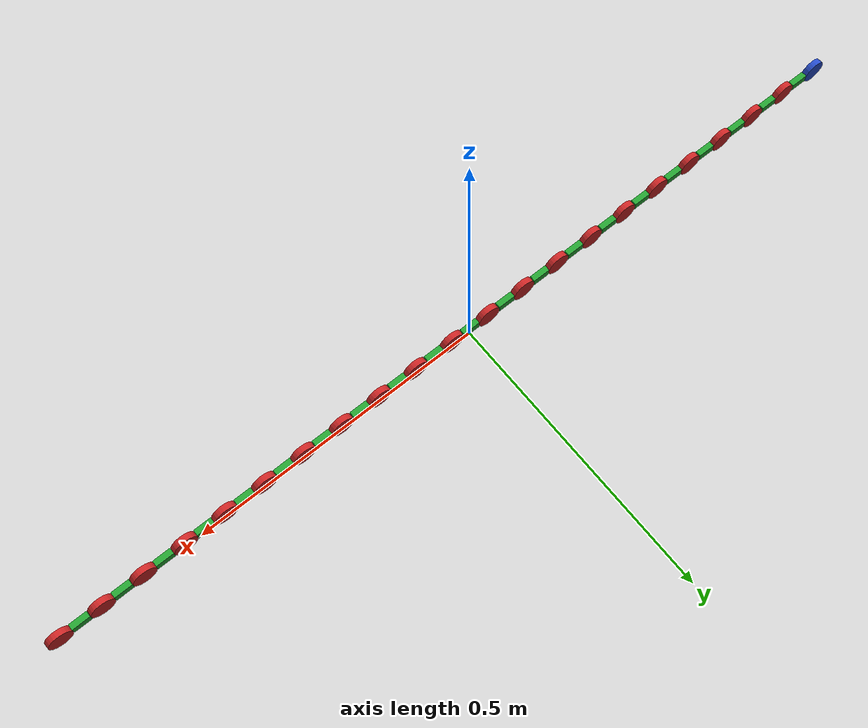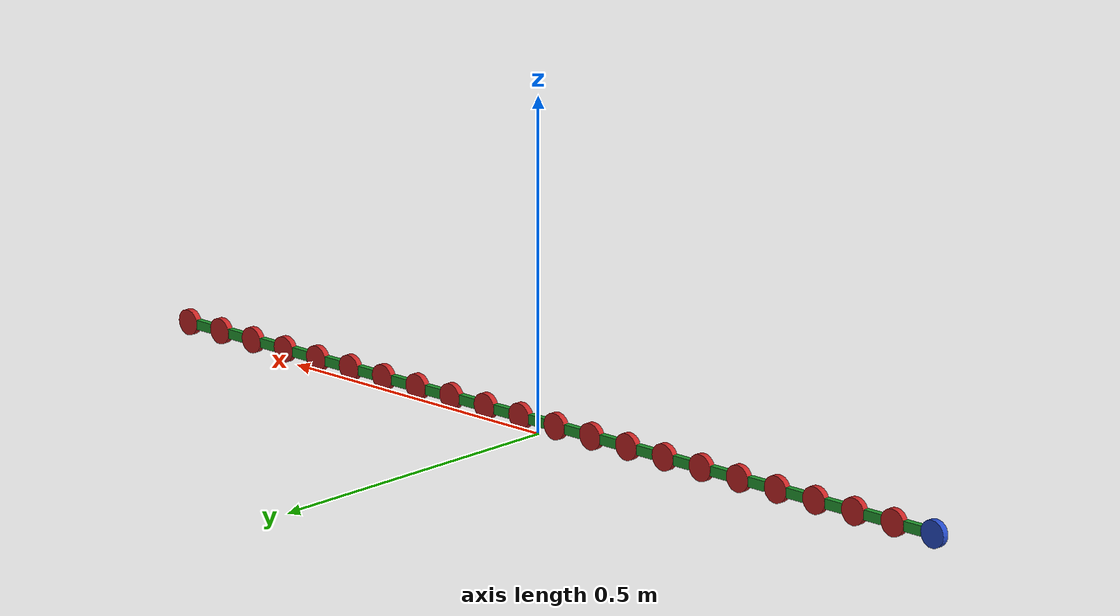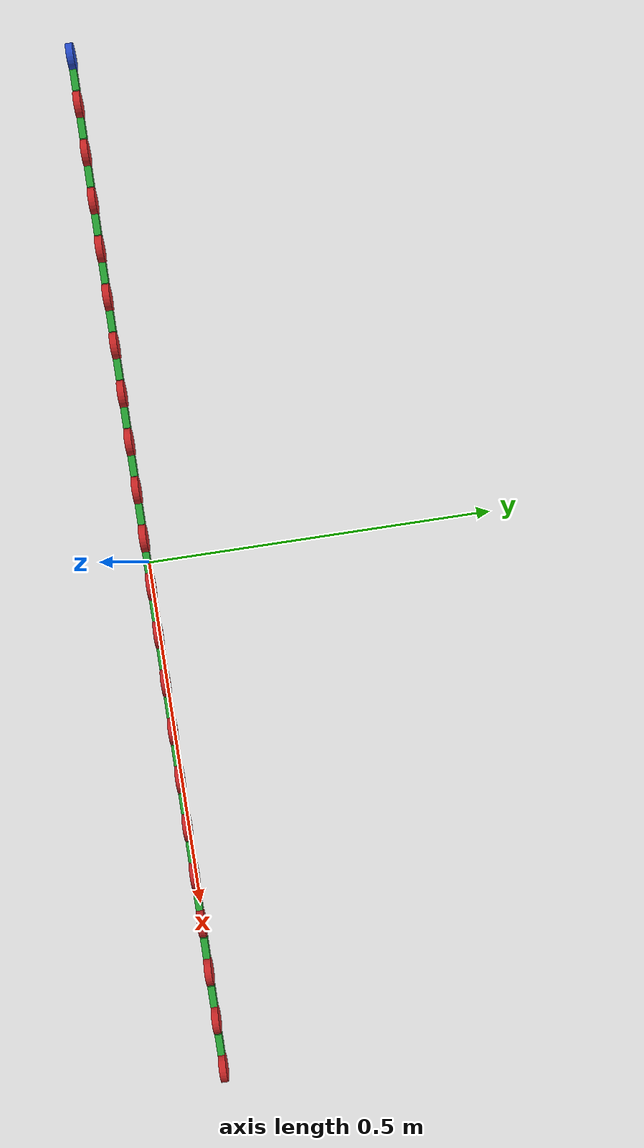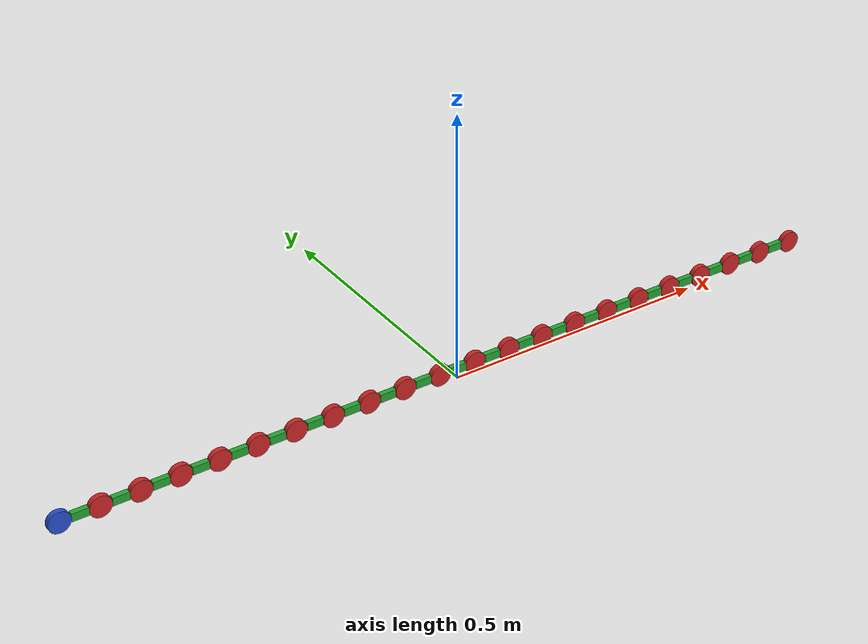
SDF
<?xml version="1.0"?>

<sdf version="1.4">
    <model name="chain_straight">
        <static>false</static>
        <pose>0 0 0.02 0 0 0</pose>

        <include>
            <uri>model://chain_link</uri>
            <pose>-0.7 0 0 0 0 0</pose>
            <name>chain_link_01</name>
        </include>

        <include>
            <uri>model://chain_link</uri>
            <pose>-0.63 0 0 0 0 0</pose>
            <name>chain_link_02</name>
        </include>

        <include>
            <uri>model://chain_link</uri>
            <pose>-0.56 0 0 0 0 0</pose>
            <name>chain_link_03</name>
        </include>

        <include>
            <uri>model://chain_link</uri>
            <pose>-0.49 0 0 0 0 0</pose>
            <name>chain_link_04</name>
        </include>

        <include>
            <uri>model://chain_link</uri>
            <pose>-0.42 0 0 0 0 0</pose>
            <name>chain_link_05</name>
        </include>

        <include>
            <uri>model://chain_link</uri>
            <pose>-0.35 0 0 0 0 0</pose>
            <name>chain_link_06</name>
        </include>

        <include>
            <uri>model://chain_link</uri>
            <pose>-0.28 0 0 0 0 0</pose>
            <name>chain_link_07</name>
        </include>

        <include>
            <uri>model://chain_link</uri>
            <pose>-0.21 0 0 0 0 0</pose>
            <name>chain_link_08</name>
        </include>

        <include>
            <uri>model://chain_link</uri>
            <pose>-0.14 0 0 0 0 0</pose>
            <name>chain_link_09</name>
        </include>

        <include>
            <uri>model://chain_link</uri>
            <pose>-0.07 0 0 0 0 0</pose>
            <name>chain_link_10</name>
        </include>

        <include>
            <uri>model://chain_link</uri>
            <pose>0 0 0 0 0 0</pose>
            <name>chain_link_11</name>
        </include>

        <include>
            <uri>model://chain_link</uri>
            <pose>0.07 0 0 0 0 0</pose>
            <name>chain_link_12</name>
        </include>

        <include>
            <uri>model://chain_link</uri>
            <pose>0.14 0 0 0 0 0</pose>
            <name>chain_link_13</name>
        </include>

        <include>
            <uri>model://chain_link</uri>
            <pose>0.21 0 0 0 0 0</pose>
            <name>chain_link_14</name>
        </include>

        <include>
            <uri>model://chain_link</uri>
            <pose>0.28 0 0 0 0 0</pose>
            <name>chain_link_15</name>
        </include>

        <include>
            <uri>model://chain_link</uri>
            <pose>0.35 0 0 0 0 0</pose>
            <name>chain_link_16</name>
        </include>

        <include>
            <uri>model://chain_link</uri>
            <pose>0.42 0 0 0 0 0</pose>
            <name>chain_link_17</name>
        </include>

        <include>
            <uri>model://chain_link</uri>
            <pose>0.49 0 0 0 0 0</pose>
            <name>chain_link_18</name>
        </include>

        <include>
            <uri>model://chain_link</uri>
            <pose>0.56 0 0 0 0 0</pose>
            <name>chain_link_19</name>
        </include>

        <include>
            <uri>model://chain_link</uri>
            <pose>0.63 0 0 0 0 0</pose>
            <name>chain_link_20</name>
        </include>

        <include>
            <uri>model://chain_link</uri>
            <pose>0.7 0 0 0 0 0</pose>
            <name>chain_link_21</name>
        </include>

        <joint name="rivet_01_02" type="revolute">
            <pose>0 0 0 0 0 0</pose>
            <child>chain_link_02::link_a</child>
            <parent>chain_link_01::link_b</parent>
            <axis>
                <limit>
                    <lower>-0.125</lower>
                    <upper>0.125</upper>
                </limit>
                <xyz>0 1 0</xyz>
            </axis>
        </joint>

        <joint name="rivet_02_03" type="revolute">
            <pose>0 0 0 0 0 0</pose>
            <child>chain_link_03::link_a</child>
            <parent>chain_link_02::link_b</parent>
            <axis>
                <limit>
                    <lower>-0.125</lower>
                    <upper>0.125</upper>
                </limit>
                <xyz>0 1 0</xyz>
            </axis>
        </joint>

        <joint name="rivet_03_04" type="revolute">
            <pose>0 0 0 0 0 0</pose>
            <child>chain_link_04::link_a</child>
            <parent>chain_link_03::link_b</parent>
            <axis>
                <limit>
                    <lower>-0.125</lower>
                    <upper>0.125</upper>
                </limit>
                <xyz>0 1 0</xyz>
            </axis>
        </joint>

        <joint name="rivet_04_05" type="revolute">
            <pose>0 0 0 0 0 0</pose>
            <child>chain_link_05::link_a</child>
            <parent>chain_link_04::link_b</parent>
            <axis>
                <limit>
                    <lower>-0.125</lower>
                    <upper>0.125</upper>
                </limit>
                <xyz>0 1 0</xyz>
            </axis>
        </joint>

        <joint name="rivet_05_06" type="revolute">
            <pose>0 0 0 0 0 0</pose>
            <child>chain_link_06::link_a</child>
            <parent>chain_link_05::link_b</parent>
            <axis>
                <limit>
                    <lower>-0.125</lower>
                    <upper>0.125</upper>
                </limit>
                <xyz>0 1 0</xyz>
            </axis>
        </joint>

        <joint name="rivet_06_07" type="revolute">
            <pose>0 0 0 0 0 0</pose>
            <child>chain_link_07::link_a</child>
            <parent>chain_link_06::link_b</parent>
            <axis>
                <limit>
                    <lower>-0.125</lower>
                    <upper>0.125</upper>
                </limit>
                <xyz>0 1 0</xyz>
            </axis>
        </joint>

        <joint name="rivet_07_08" type="revolute">
            <pose>0 0 0 0 0 0</pose>
            <child>chain_link_08::link_a</child>
            <parent>chain_link_07::link_b</parent>
            <axis>
                <limit>
                    <lower>-0.125</lower>
                    <upper>0.125</upper>
                </limit>
                <xyz>0 1 0</xyz>
            </axis>
        </joint>

        <joint name="rivet_08_09" type="revolute">
            <pose>0 0 0 0 0 0</pose>
            <child>chain_link_09::link_a</child>
            <parent>chain_link_08::link_b</parent>
            <axis>
                <limit>
                    <lower>-0.125</lower>
                    <upper>0.125</upper>
                </limit>
                <xyz>0 1 0</xyz>
            </axis>
        </joint>

        <joint name="rivet_09_10" type="revolute">
            <pose>0 0 0 0 0 0</pose>
            <child>chain_link_10::link_a</child>
            <parent>chain_link_09::link_b</parent>
            <axis>
                <limit>
                    <lower>-0.125</lower>
                    <upper>0.125</upper>
                </limit>
                <xyz>0 1 0</xyz>
            </axis>
        </joint>

        <joint name="rivet_10_11" type="revolute">
            <pose>0 0 0 0 0 0</pose>
            <child>chain_link_11::link_a</child>
            <parent>chain_link_10::link_b</parent>
            <axis>
                <limit>
                    <lower>-0.125</lower>
                    <upper>0.125</upper>
                </limit>
                <xyz>0 1 0</xyz>
            </axis>
        </joint>

        <joint name="rivet_11_12" type="revolute">
            <pose>0 0 0 0 0 0</pose>
            <child>chain_link_12::link_a</child>
            <parent>chain_link_11::link_b</parent>
            <axis>
                <limit>
                    <lower>-0.125</lower>
                    <upper>0.125</upper>
                </limit>
                <xyz>0 1 0</xyz>
            </axis>
        </joint>

        <joint name="rivet_12_13" type="revolute">
            <pose>0 0 0 0 0 0</pose>
            <child>chain_link_13::link_a</child>
            <parent>chain_link_12::link_b</parent>
            <axis>
                <limit>
                    <lower>-0.125</lower>
                    <upper>0.125</upper>
                </limit>
                <xyz>0 1 0</xyz>
            </axis>
        </joint>

        <joint name="rivet_13_14" type="revolute">
            <pose>0 0 0 0 0 0</pose>
            <child>chain_link_14::link_a</child>
            <parent>chain_link_13::link_b</parent>
            <axis>
                <limit>
                    <lower>-0.125</lower>
                    <upper>0.125</upper>
                </limit>
                <xyz>0 1 0</xyz>
            </axis>
        </joint>

        <joint name="rivet_14_15" type="revolute">
            <pose>0 0 0 0 0 0</pose>
            <child>chain_link_15::link_a</child>
            <parent>chain_link_14::link_b</parent>
            <axis>
                <limit>
                    <lower>-0.125</lower>
                    <upper>0.125</upper>
                </limit>
                <xyz>0 1 0</xyz>
            </axis>
        </joint>

        <joint name="rivet_15_16" type="revolute">
            <pose>0 0 0 0 0 0</pose>
            <child>chain_link_16::link_a</child>
            <parent>chain_link_15::link_b</parent>
            <axis>
                <limit>
                    <lower>-0.125</lower>
                    <upper>0.125</upper>
                </limit>
                <xyz>0 1 0</xyz>
            </axis>
        </joint>

        <joint name="rivet_16_17" type="revolute">
            <pose>0 0 0 0 0 0</pose>
            <child>chain_link_17::link_a</child>
            <parent>chain_link_16::link_b</parent>
            <axis>
                <limit>
                    <lower>-0.125</lower>
                    <upper>0.125</upper>
                </limit>
                <xyz>0 1 0</xyz>
            </axis>
        </joint>

        <joint name="rivet_17_18" type="revolute">
            <pose>0 0 0 0 0 0</pose>
            <child>chain_link_18::link_a</child>
            <parent>chain_link_17::link_b</parent>
            <axis>
                <limit>
                    <lower>-0.125</lower>
                    <upper>0.125</upper>
                </limit>
                <xyz>0 1 0</xyz>
            </axis>
        </joint>

        <joint name="rivet_18_19" type="revolute">
            <pose>0 0 0 0 0 0</pose>
            <child>chain_link_19::link_a</child>
            <parent>chain_link_18::link_b</parent>
            <axis>
                <limit>
                    <lower>-0.125</lower>
                    <upper>0.125</upper>
                </limit>
                <xyz>0 1 0</xyz>
            </axis>
        </joint>

        <joint name="rivet_19_20" type="revolute">
            <pose>0 0 0 0 0 0</pose>
            <child>chain_link_20::link_a</child>
            <parent>chain_link_19::link_b</parent>
            <axis>
                <limit>
                    <lower>-0.125</lower>
                    <upper>0.125</upper>
                </limit>
                <xyz>0 1 0</xyz>
            </axis>
        </joint>

        <joint name="rivet_20_21" type="revolute">
            <pose>0 0 0 0 0 0</pose>
            <child>chain_link_21::link_a</child>
            <parent>chain_link_20::link_b</parent>
            <axis>
                <limit>
                    <lower>-0.125</lower>
                    <upper>0.125</upper>
                </limit>
                <xyz>0 1 0</xyz>
            </axis>
        </joint>

    </model>
</sdf>

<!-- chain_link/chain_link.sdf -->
<sdf version="1.4">
    <model name="chain_link">
        <static>false</static>
        <pose>0 0 0.02 0 0 0</pose>

        <link name="link_a">
            <pose>-0.035 0 0 0 1.5707 1.5707</pose>
            <inertial>
                <pose>0 0 0 0 0 0</pose>
                <inertia>
                    <ixx>0.0001</ixx>
                    <ixy>0</ixy>
                    <ixz>0</ixz>
                    <iyy>0.0001</iyy>
                    <iyz>0</iyz>
                    <izz>0.0001</izz>
                </inertia>
                <mass>0.05</mass>
            </inertial>
            <collision name="link_a_collision">
                <geometry>
                    <cylinder>
                        <radius>.02</radius>
                        <length>.01</length>
                    </cylinder>
                </geometry>
                <surface>
                    <friction>
                        <ode>
                            <mu>10</mu>
                            <mu2>10</mu2>
                            <slip1>1.0</slip1>
                            <slip2>1.0</slip2>
                        </ode>
                    </friction>
                </surface>
            </collision>
            <visual name="link_a_visual">
                <geometry>
                    <cylinder>
                        <radius>.02</radius>
                        <length>.01</length>
                    </cylinder>
                </geometry>
                <material>
                    <script>
                        <uri>file://media/materials/scripts/gazebo.material</uri>
                        <name>Gazebo/Blue</name>
                    </script>
                </material>
            </visual>
        </link>
        <link name="link_b">
            <pose>0.035 0 0 0 1.5707 1.5707</pose>
            <inertial>
                <pose>0 0 0 0 0 0</pose>
                <inertia>
                    <ixx>0.0001</ixx>
                    <ixy>0</ixy>
                    <ixz>0</ixz>
                    <iyy>0.0001</iyy>
                    <iyz>0</iyz>
                    <izz>0.0001</izz>
                </inertia>
                <mass>0.05</mass>
            </inertial>
            <collision name="link_b_collision">
                <geometry>
                    <cylinder>
                        <radius>.02</radius>
                        <length>.01</length>
                    </cylinder>
                </geometry>
                <surface>
                    <friction>
                        <ode>
                            <mu>10</mu>
                            <mu2>10</mu2>
                            <slip1>1.0</slip1>
                            <slip2>1.0</slip2>
                        </ode>
                    </friction>
                </surface>
            </collision>
            <visual name="link_b_visual">
                <geometry>
                    <cylinder>
                        <radius>.02</radius>
                        <length>.01</length>
                    </cylinder>
                </geometry>
                <material>
                    <script>
                        <uri>file://media/materials/scripts/gazebo.material</uri>
                        <name>Gazebo/Red</name>
                    </script>
                </material>
            </visual>
        </link>
        <link name="link_c">
            <pose>0 0 0 0 0 0</pose>
            <inertial>
                <pose>0 0 0 0 0 0</pose>
                <inertia>
                    <ixx>0.0001</ixx>
                    <ixy>0</ixy>
                    <ixz>0</ixz>
                    <iyy>0.0001</iyy>
                    <iyz>0</iyz>
                    <izz>0.0001</izz>
                </inertia>
                <mass>0.05</mass>
            </inertial>
            <collision name="link_c_collision">
                <geometry>
                    <box>
                        <size>0.03 0.01 0.015</size>
                    </box>
                </geometry>
                <surface>
                    <friction>
                        <ode>
                            <mu>10</mu>
                            <mu2>10</mu2>
                            <slip1>1.0</slip1>
                            <slip2>1.0</slip2>
                        </ode>
                    </friction>
                </surface>
            </collision>
            <visual name="link_c_visual">
                <geometry>
                    <box>
                        <size>0.03 0.01 0.015</size>
                    </box>
                </geometry>
                <material>
                    <script>
                        <uri>file://media/materials/scripts/gazebo.material</uri>
                        <name>Gazebo/Green</name>
                    </script>
                </material>
            </visual>
        </link>

        <joint name="link_a_c" type="revolute">
            <pose>0 0 0 0 0 0</pose>
            <child>link_c</child>
            <parent>link_a</parent>
            <axis>
                <limit>
                    <lower>0</lower>
                    <upper>0</upper>
                </limit>
                <xyz>0 1 0</xyz>
            </axis>
        </joint>
        <joint name="link_b_c" type="revolute">
            <pose>0 0 0 0 0 0</pose>
            <child>link_c</child>
            <parent>link_b</parent>
            <axis>
                <limit>
                    <lower>0</lower>
                    <upper>0</upper>
                </limit>
                <xyz>0 1 0</xyz>
            </axis>
        </joint>

    </model>
</sdf>
